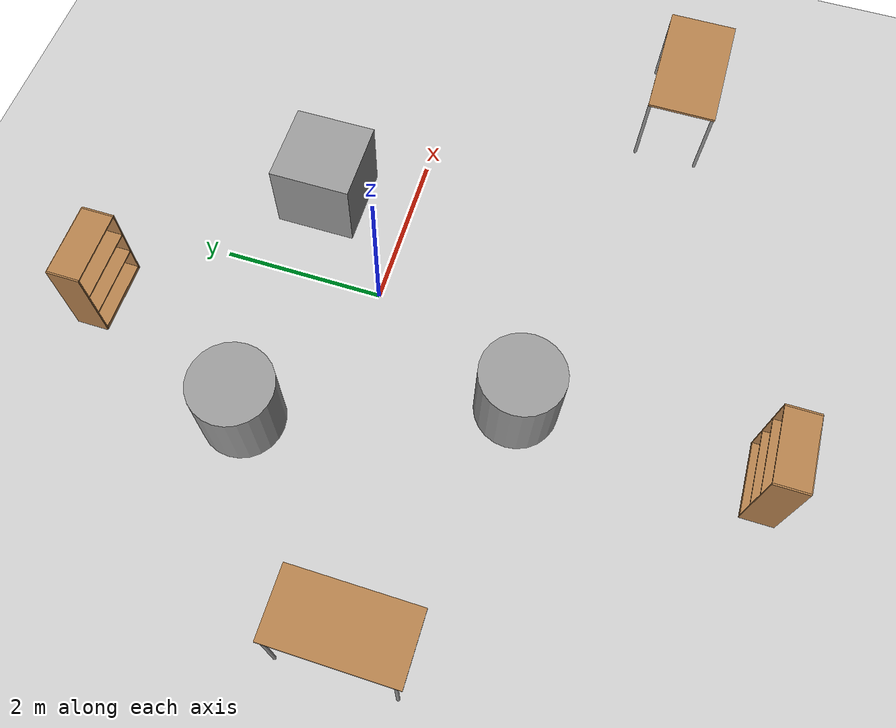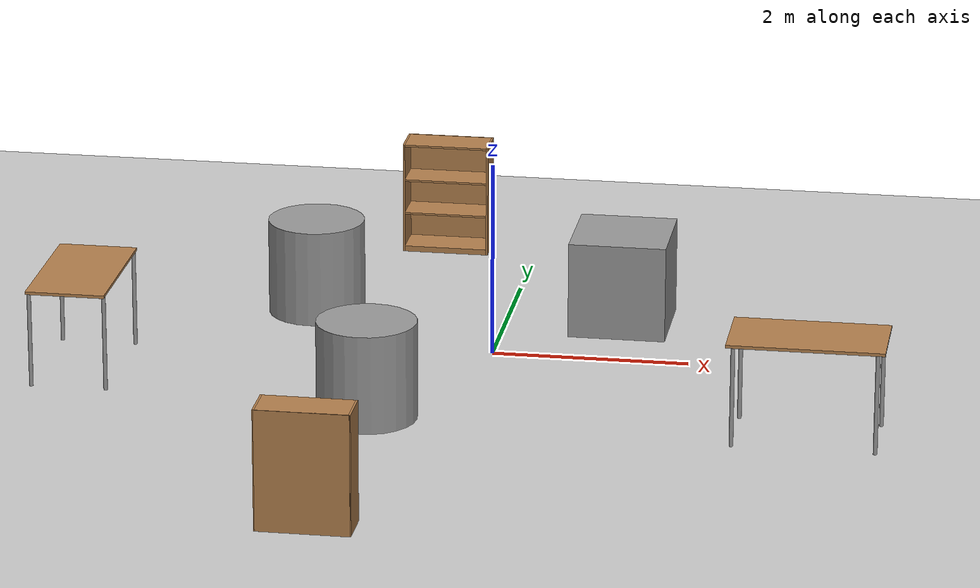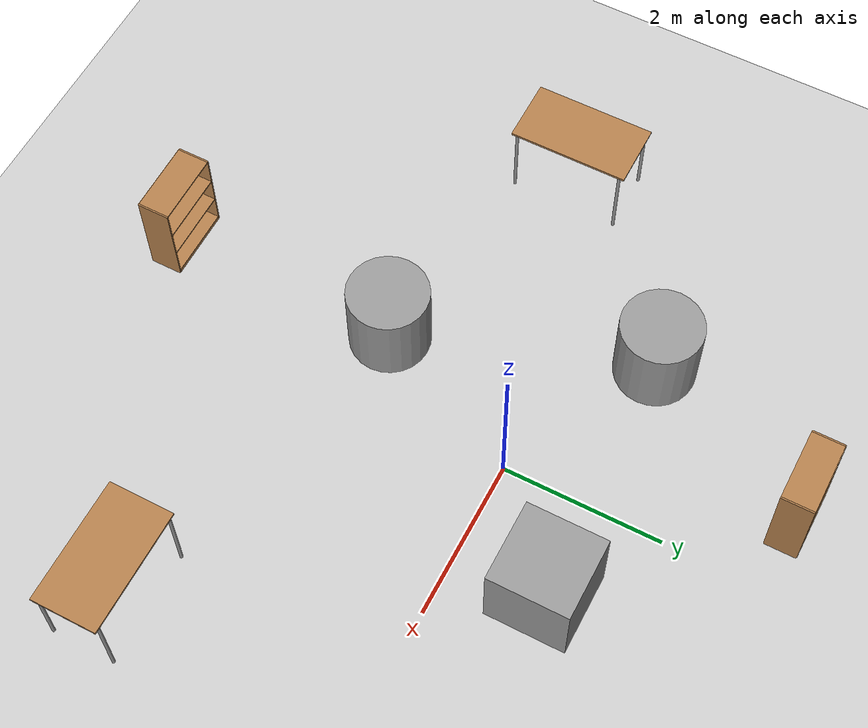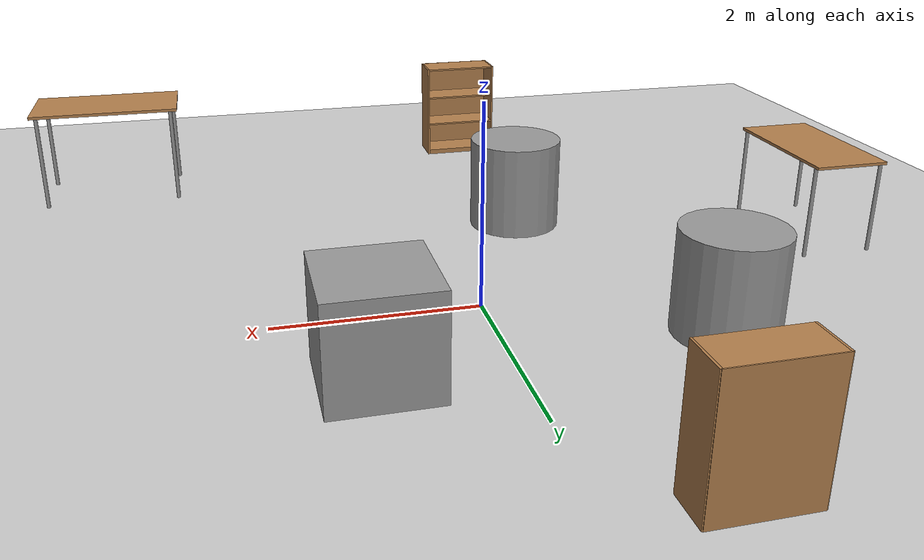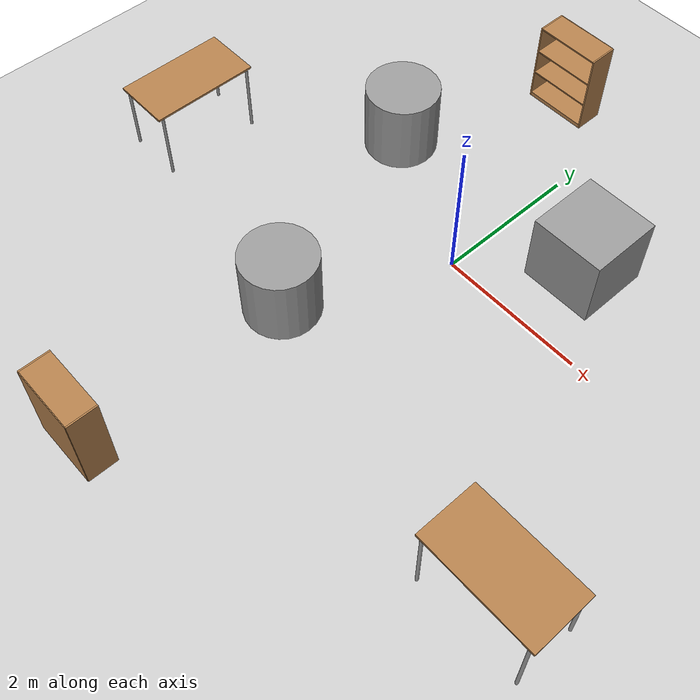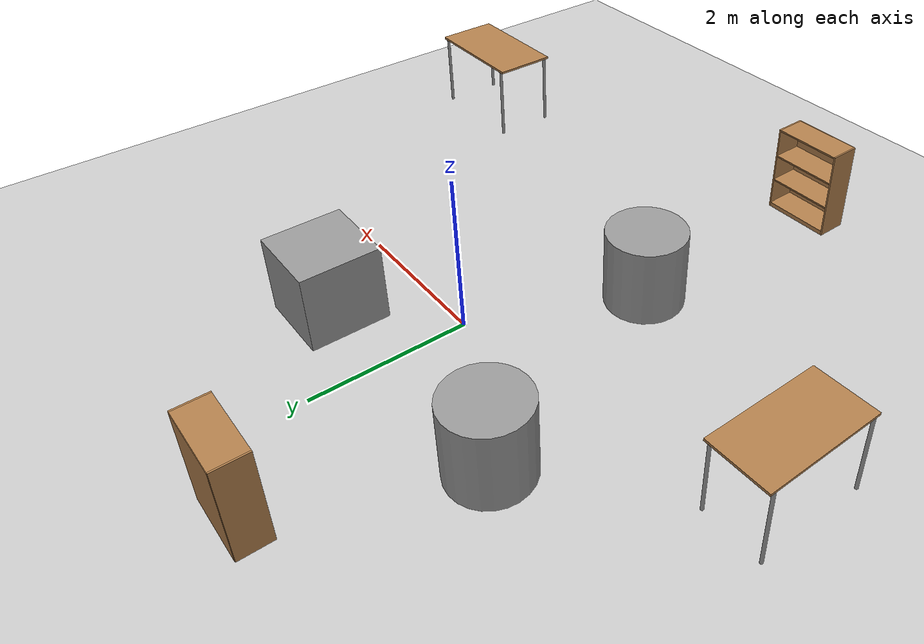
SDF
<sdf version="1.4">
 <world name="default">
  <light name="sun" type="directional">
   <pose>0 0 10 0 -0 0</pose>
   <diffuse>0.8 0.8 0.8 1</diffuse>
   <specular>0.2 0.2 0.2 1</specular>
   <attenuation>
    <range>1000</range>
    <constant>0.9</constant>
    <linear>0.01</linear>
    <quadratic>0.001</quadratic>
   </attenuation>
   <direction>-0.5 0.1 -0.9</direction>
  </light>
  <model name="ground_plane">
   <static>1</static>
   <link name="link">
    <collision name="collision">
     <geometry><plane><normal>0 0 1</normal><size>100 100</size></plane></geometry>
     <surface><friction><ode><mu>100</mu><mu2>50</mu2></ode></friction></surface>
    </collision>
    <visual name="visual">
     <cast_shadows>0</cast_shadows>
     <geometry><plane><normal>0 0 1</normal><size>100 100</size></plane></geometry>
     <material>
      <script><uri>file://media/materials/scripts/gazebo.material</uri><name>Gazebo/Grey</name></script>
     </material>
    </visual>
    <velocity_decay><linear>0</linear><angular>0</angular></velocity_decay>
   </link>
  </model>
  <physics type="ode">
   <max_step_size>0.001</max_step_size>
   <real_time_factor>1</real_time_factor>
   <real_time_update_rate>1000</real_time_update_rate>
   <gravity>0 0 -9.8</gravity>
  </physics>
  <scene><ambient>0.4 0.4 0.4 1</ambient><background>0.7 0.7 0.7 1</background><shadows>1</shadows></scene>
  <spherical_coordinates>
   <surface_model>EARTH_WGS84</surface_model>
   <latitude_deg>0</latitude_deg>
   <longitude_deg>0</longitude_deg>
   <elevation>0</elevation>
   <heading_deg>0</heading_deg>
  </spherical_coordinates>
  <model name="unit_cylinder_1">
   <pose>-0.942996 -1.99515 0.499998 0 -0 0</pose>
   <link name="link">
    <inertial>
     <mass>1</mass>
     <inertia><ixx>1</ixx><ixy>0</ixy><ixz>0</ixz><iyy>1</iyy><iyz>0</iyz><izz>1</izz></inertia>
    </inertial>
    <collision name="collision">
     <geometry><cylinder><radius>0.5</radius><length>1</length></cylinder></geometry>
    </collision>
    <visual name="visual">
     <geometry><cylinder><radius>0.5</radius><length>1</length></cylinder></geometry>
     <material>
      <script><uri>file://media/materials/scripts/gazebo.material</uri><name>Gazebo/Grey</name></script>
     </material>
    </visual>
    <velocity_decay><linear>0</linear><angular>0</angular></velocity_decay>
   </link>
   <static>0</static>
  </model>
  <model name="unit_cylinder_2">
   <pose>-2 1 0.499992 0 -0 0</pose>
   <link name="link">
    <inertial>
     <mass>1</mass>
     <inertia><ixx>1</ixx><ixy>0</ixy><ixz>0</ixz><iyy>1</iyy><iyz>0</iyz><izz>1</izz></inertia>
    </inertial>
    <collision name="collision">
     <geometry><cylinder><radius>0.5</radius><length>1</length></cylinder></geometry>
    </collision>
    <visual name="visual">
     <geometry><cylinder><radius>0.5</radius><length>1</length></cylinder></geometry>
     <material>
      <script><uri>file://media/materials/scripts/gazebo.material</uri><name>Gazebo/Grey</name></script>
     </material>
    </visual>
    <velocity_decay><linear>0</linear><angular>0</angular></velocity_decay>
   </link>
   <static>0</static>
  </model>
  <model name="unit_box_1">
   <pose>1.18874 1.09822 0.5 0 -0 0</pose>
   <link name="link">
    <inertial>
     <mass>1</mass>
     <inertia><ixx>1</ixx><ixy>0</ixy><ixz>0</ixz><iyy>1</iyy><iyz>0</iyz><izz>1</izz></inertia>
    </inertial>
    <collision name="collision"><geometry><box><size>1 1 1</size></box></geometry></collision>
    <visual name="visual">
     <geometry><box><size>1 1 1</size></box></geometry>
     <material>
      <script><uri>file://media/materials/scripts/gazebo.material</uri><name>Gazebo/Grey</name></script>
     </material>
    </visual>
    <velocity_decay><linear>0</linear><angular>0</angular></velocity_decay>
   </link>
   <static>0</static>
  </model>
  <model name="table">
   <static>1</static>
   <link name="link">
    <collision name="surface">
     <pose>0 0 1 0 -0 0</pose>
     <geometry><box><size>1.5 0.8 0.03</size></box></geometry>
     <surface><friction><ode><mu>0.6</mu><mu2>0.6</mu2></ode></friction></surface>
    </collision>
    <visual name="visual1">
     <pose>0 0 1 0 -0 0</pose>
     <geometry><box><size>1.5 0.8 0.03</size></box></geometry>
     <material>
      <script><uri>file://media/materials/scripts/gazebo.material</uri><name>Gazebo/Wood</name></script>
     </material>
    </visual>
    <collision name="front_left_leg">
     <pose>0.68 0.38 0.5 0 -0 0</pose>
     <geometry><cylinder><radius>0.02</radius><length>1</length></cylinder></geometry>
    </collision>
    <visual name="front_left_leg">
     <pose>0.68 0.38 0.5 0 -0 0</pose>
     <geometry><cylinder><radius>0.02</radius><length>1</length></cylinder></geometry>
     <material>
      <script><uri>file://media/materials/scripts/gazebo.material</uri><name>Gazebo/Grey</name></script>
     </material>
    </visual>
    <collision name="front_right_leg">
     <pose>0.68 -0.38 0.5 0 -0 0</pose>
     <geometry><cylinder><radius>0.02</radius><length>1</length></cylinder></geometry>
    </collision>
    <visual name="front_right_leg">
     <pose>0.68 -0.38 0.5 0 -0 0</pose>
     <geometry><cylinder><radius>0.02</radius><length>1</length></cylinder></geometry>
     <material>
      <script><uri>file://media/materials/scripts/gazebo.material</uri><name>Gazebo/Grey</name></script>
     </material>
    </visual>
    <collision name="back_right_leg">
     <pose>-0.68 -0.38 0.5 0 -0 0</pose>
     <geometry><cylinder><radius>0.02</radius><length>1</length></cylinder></geometry>
    </collision>
    <visual name="back_right_leg">
     <pose>-0.68 -0.38 0.5 0 -0 0</pose>
     <geometry><cylinder><radius>0.02</radius><length>1</length></cylinder></geometry>
     <material>
      <script><uri>file://media/materials/scripts/gazebo.material</uri><name>Gazebo/Grey</name></script>
     </material>
    </visual>
    <collision name="back_left_leg">
     <pose>-0.68 0.38 0.5 0 -0 0</pose>
     <geometry><cylinder><radius>0.02</radius><length>1</length></cylinder></geometry>
    </collision>
    <visual name="back_left_leg">
     <pose>-0.68 0.38 0.5 0 -0 0</pose>
     <geometry><cylinder><radius>0.02</radius><length>1</length></cylinder></geometry>
     <material>
      <script><uri>file://media/materials/scripts/gazebo.material</uri><name>Gazebo/Grey</name></script>
     </material>
    </visual>
    <velocity_decay><linear>0</linear><angular>0</angular></velocity_decay>
   </link>
   <pose>3.45998 -2.93895 0.423129 0 -0 0</pose>
  </model>
  <model name="table_0">
   <static>1</static>
   <link name="link">
    <collision name="surface">
     <pose>0 0 1 0 -0 0</pose>
     <geometry><box><size>1.5 0.8 0.03</size></box></geometry>
     <surface><friction><ode><mu>0.6</mu><mu2>0.6</mu2></ode></friction></surface>
    </collision>
    <visual name="visual1">
     <pose>0 0 1 0 -0 0</pose>
     <geometry><box><size>1.5 0.8 0.03</size></box></geometry>
     <material>
      <script><uri>file://media/materials/scripts/gazebo.material</uri><name>Gazebo/Wood</name></script>
     </material>
    </visual>
    <collision name="front_left_leg">
     <pose>0.68 0.38 0.5 0 -0 0</pose>
     <geometry><cylinder><radius>0.02</radius><length>1</length></cylinder></geometry>
    </collision>
    <visual name="front_left_leg">
     <pose>0.68 0.38 0.5 0 -0 0</pose>
     <geometry><cylinder><radius>0.02</radius><length>1</length></cylinder></geometry>
     <material>
      <script><uri>file://media/materials/scripts/gazebo.material</uri><name>Gazebo/Grey</name></script>
     </material>
    </visual>
    <collision name="front_right_leg">
     <pose>0.68 -0.38 0.5 0 -0 0</pose>
     <geometry><cylinder><radius>0.02</radius><length>1</length></cylinder></geometry>
    </collision>
    <visual name="front_right_leg">
     <pose>0.68 -0.38 0.5 0 -0 0</pose>
     <geometry><cylinder><radius>0.02</radius><length>1</length></cylinder></geometry>
     <material>
      <script><uri>file://media/materials/scripts/gazebo.material</uri><name>Gazebo/Grey</name></script>
     </material>
    </visual>
    <collision name="back_right_leg">
     <pose>-0.68 -0.38 0.5 0 -0 0</pose>
     <geometry><cylinder><radius>0.02</radius><length>1</length></cylinder></geometry>
    </collision>
    <visual name="back_right_leg">
     <pose>-0.68 -0.38 0.5 0 -0 0</pose>
     <geometry><cylinder><radius>0.02</radius><length>1</length></cylinder></geometry>
     <material>
      <script><uri>file://media/materials/scripts/gazebo.material</uri><name>Gazebo/Grey</name></script>
     </material>
    </visual>
    <collision name="back_left_leg">
     <pose>-0.68 0.38 0.5 0 -0 0</pose>
     <geometry><cylinder><radius>0.02</radius><length>1</length></cylinder></geometry>
    </collision>
    <visual name="back_left_leg">
     <pose>-0.68 0.38 0.5 0 -0 0</pose>
     <geometry><cylinder><radius>0.02</radius><length>1</length></cylinder></geometry>
     <material>
      <script><uri>file://media/materials/scripts/gazebo.material</uri><name>Gazebo/Grey</name></script>
     </material>
    </visual>
    <velocity_decay><linear>0</linear><angular>0</angular></velocity_decay>
   </link>
   <pose>-4.02678 -0.992631 0 0 -0 1.5708</pose>
  </model>
  <model name="bookshelf">
   <static>1</static>
   <link name="link">
    <inertial><mass>1</mass></inertial>
    <collision name="back">
     <pose>0 0.005 0.6 0 -0 0</pose>
     <geometry><box><size>0.9 0.01 1.2</size></box></geometry>
    </collision>
    <visual name="visual1">
     <pose>0 0.005 0.6 0 -0 0</pose>
     <geometry><box><size>0.9 0.01 1.2</size></box></geometry>
     <material>
      <script><uri>file://media/materials/scripts/gazebo.material</uri><name>Gazebo/Wood</name></script>
     </material>
    </visual>
    <collision name="left_side">
     <pose>0.45 -0.195 0.6 0 -0 0</pose>
     <geometry><box><size>0.02 0.4 1.2</size></box></geometry>
    </collision>
    <visual name="visual2">
     <pose>0.45 -0.195 0.6 0 -0 0</pose>
     <geometry><box><size>0.02 0.4 1.2</size></box></geometry>
     <material>
      <script><uri>file://media/materials/scripts/gazebo.material</uri><name>Gazebo/Wood</name></script>
     </material>
    </visual>
    <collision name="right_side">
     <pose>-0.45 -0.195 0.6 0 -0 0</pose>
     <geometry><box><size>0.02 0.4 1.2</size></box></geometry>
    </collision>
    <visual name="visual3">
     <pose>-0.45 -0.195 0.6 0 -0 0</pose>
     <geometry><box><size>0.02 0.4 1.2</size></box></geometry>
     <material>
      <script><uri>file://media/materials/scripts/gazebo.material</uri><name>Gazebo/Wood</name></script>
     </material>
    </visual>
    <collision name="bottom">
     <pose>0 -0.195 0.03 0 -0 0</pose>
     <geometry><box><size>0.88 0.4 0.06</size></box></geometry>
    </collision>
    <visual name="visual4">
     <pose>0 -0.195 0.03 0 -0 0</pose>
     <geometry><box><size>0.88 0.4 0.06</size></box></geometry>
     <material>
      <script><uri>file://media/materials/scripts/gazebo.material</uri><name>Gazebo/Wood</name></script>
     </material>
    </visual>
    <collision name="top">
     <pose>0 -0.195 1.19 0 -0 0</pose>
     <geometry><box><size>0.88 0.4 0.02</size></box></geometry>
    </collision>
    <visual name="visual5">
     <pose>0 -0.195 1.19 0 -0 0</pose>
     <geometry><box><size>0.88 0.4 0.02</size></box></geometry>
     <material>
      <script><uri>file://media/materials/scripts/gazebo.material</uri><name>Gazebo/Wood</name></script>
     </material>
    </visual>
    <collision name="low_shelf">
     <pose>0 -0.195 0.43 0 -0 0</pose>
     <geometry><box><size>0.88 0.4 0.02</size></box></geometry>
    </collision>
    <visual name="visual6">
     <pose>0 -0.195 0.43 0 -0 0</pose>
     <geometry><box><size>0.88 0.4 0.02</size></box></geometry>
     <material>
      <script><uri>file://media/materials/scripts/gazebo.material</uri><name>Gazebo/Wood</name></script>
     </material>
    </visual>
    <collision name="high_shelf">
     <pose>0 -0.195 0.8 0 -0 0</pose>
     <geometry><box><size>0.88 0.4 0.02</size></box></geometry>
    </collision>
    <visual name="visual7">
     <pose>0 -0.195 0.8 0 -0 0</pose>
     <geometry><box><size>0.88 0.4 0.02</size></box></geometry>
     <material>
      <script><uri>file://media/materials/scripts/gazebo.material</uri><name>Gazebo/Wood</name></script>
     </material>
    </visual>
    <velocity_decay><linear>0</linear><angular>0</angular></velocity_decay>
   </link>
   <pose>-0.999995 -5.09596 0 0 -0 3.14159</pose>
  </model>
  <model name="bookshelf_0">
   <static>1</static>
   <link name="link">
    <inertial><mass>1</mass></inertial>
    <collision name="back">
     <pose>0 0.005 0.6 0 -0 0</pose>
     <geometry><box><size>0.9 0.01 1.2</size></box></geometry>
    </collision>
    <visual name="visual1">
     <pose>0 0.005 0.6 0 -0 0</pose>
     <geometry><box><size>0.9 0.01 1.2</size></box></geometry>
     <material>
      <script><uri>file://media/materials/scripts/gazebo.material</uri><name>Gazebo/Wood</name></script>
     </material>
    </visual>
    <collision name="left_side">
     <pose>0.45 -0.195 0.6 0 -0 0</pose>
     <geometry><box><size>0.02 0.4 1.2</size></box></geometry>
    </collision>
    <visual name="visual2">
     <pose>0.45 -0.195 0.6 0 -0 0</pose>
     <geometry><box><size>0.02 0.4 1.2</size></box></geometry>
     <material>
      <script><uri>file://media/materials/scripts/gazebo.material</uri><name>Gazebo/Wood</name></script>
     </material>
    </visual>
    <collision name="right_side">
     <pose>-0.45 -0.195 0.6 0 -0 0</pose>
     <geometry><box><size>0.02 0.4 1.2</size></box></geometry>
    </collision>
    <visual name="visual3">
     <pose>-0.45 -0.195 0.6 0 -0 0</pose>
     <geometry><box><size>0.02 0.4 1.2</size></box></geometry>
     <material>
      <script><uri>file://media/materials/scripts/gazebo.material</uri><name>Gazebo/Wood</name></script>
     </material>
    </visual>
    <collision name="bottom">
     <pose>0 -0.195 0.03 0 -0 0</pose>
     <geometry><box><size>0.88 0.4 0.06</size></box></geometry>
    </collision>
    <visual name="visual4">
     <pose>0 -0.195 0.03 0 -0 0</pose>
     <geometry><box><size>0.88 0.4 0.06</size></box></geometry>
     <material>
      <script><uri>file://media/materials/scripts/gazebo.material</uri><name>Gazebo/Wood</name></script>
     </material>
    </visual>
    <collision name="top">
     <pose>0 -0.195 1.19 0 -0 0</pose>
     <geometry><box><size>0.88 0.4 0.02</size></box></geometry>
    </collision>
    <visual name="visual5">
     <pose>0 -0.195 1.19 0 -0 0</pose>
     <geometry><box><size>0.88 0.4 0.02</size></box></geometry>
     <material>
      <script><uri>file://media/materials/scripts/gazebo.material</uri><name>Gazebo/Wood</name></script>
     </material>
    </visual>
    <collision name="low_shelf">
     <pose>0 -0.195 0.43 0 -0 0</pose>
     <geometry><box><size>0.88 0.4 0.02</size></box></geometry>
    </collision>
    <visual name="visual6">
     <pose>0 -0.195 0.43 0 -0 0</pose>
     <geometry><box><size>0.88 0.4 0.02</size></box></geometry>
     <material>
      <script><uri>file://media/materials/scripts/gazebo.material</uri><name>Gazebo/Wood</name></script>
     </material>
    </visual>
    <collision name="high_shelf">
     <pose>0 -0.195 0.8 0 -0 0</pose>
     <geometry><box><size>0.88 0.4 0.02</size></box></geometry>
    </collision>
    <visual name="visual7">
     <pose>0 -0.195 0.8 0 -0 0</pose>
     <geometry><box><size>0.88 0.4 0.02</size></box></geometry>
     <material>
      <script><uri>file://media/materials/scripts/gazebo.material</uri><name>Gazebo/Wood</name></script>
     </material>
    </visual>
    <velocity_decay><linear>0</linear><angular>0</angular></velocity_decay>
   </link>
   <pose>-0.976131 3.4083 0 0 -0 0</pose>
  </model>
 </world>
</sdf>
